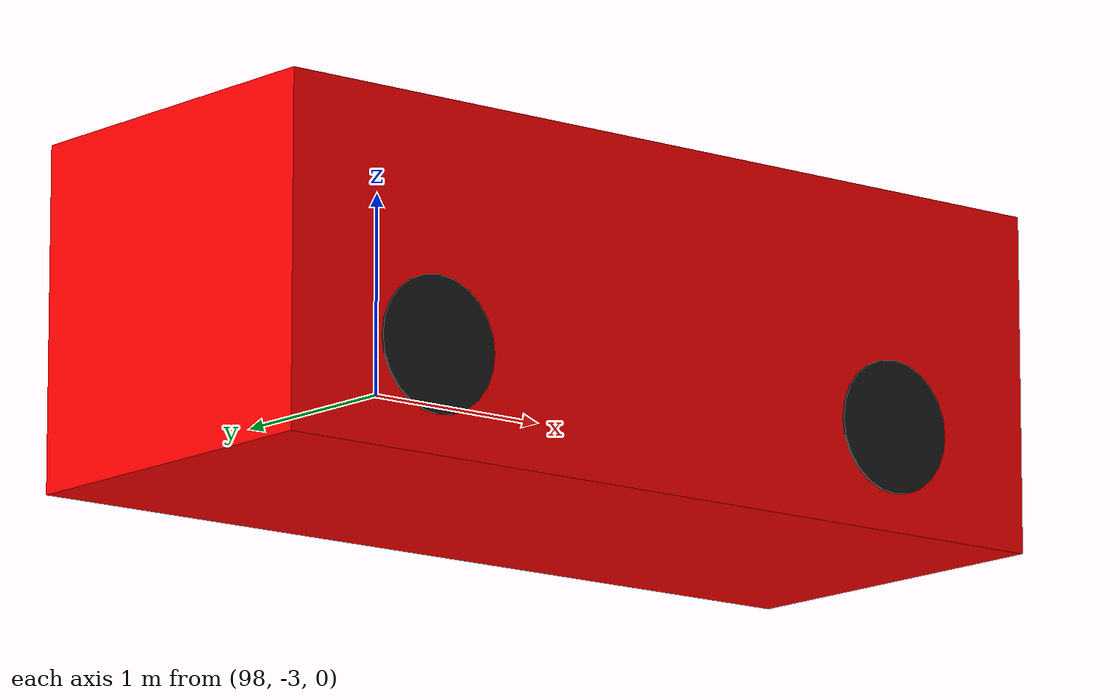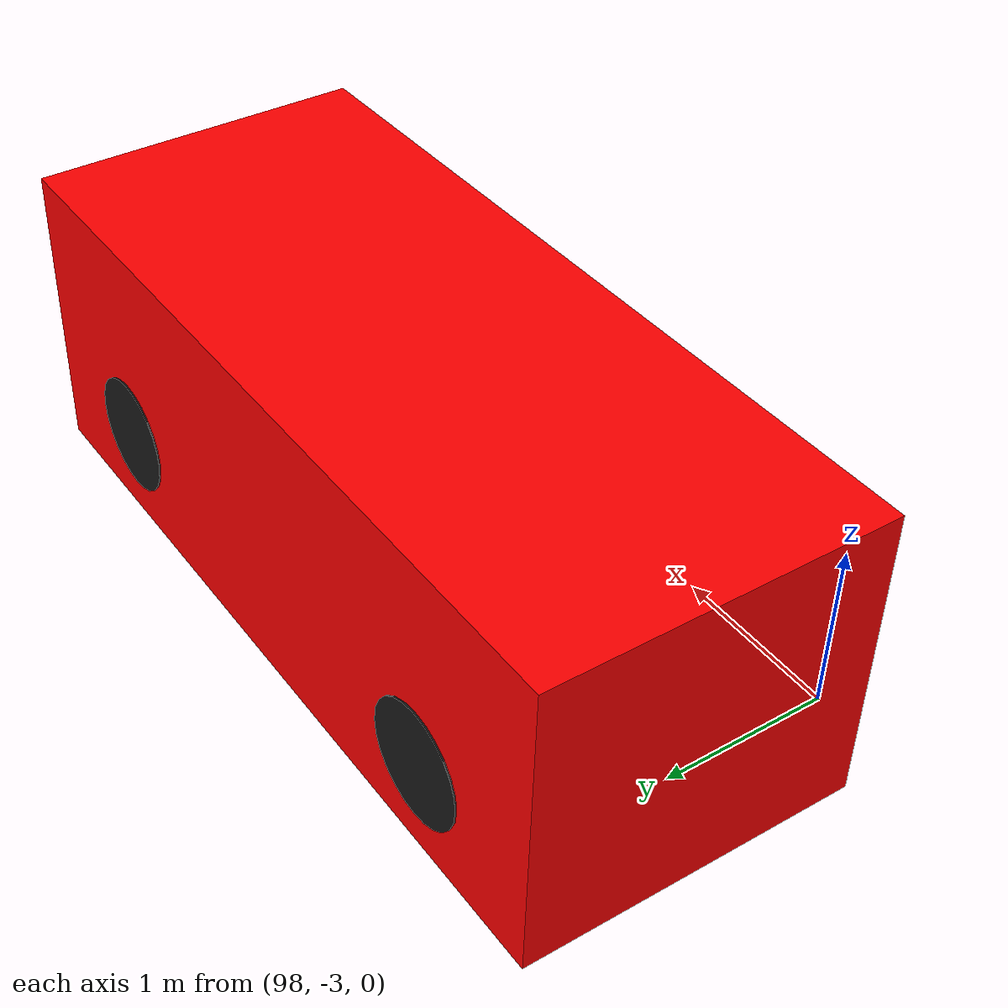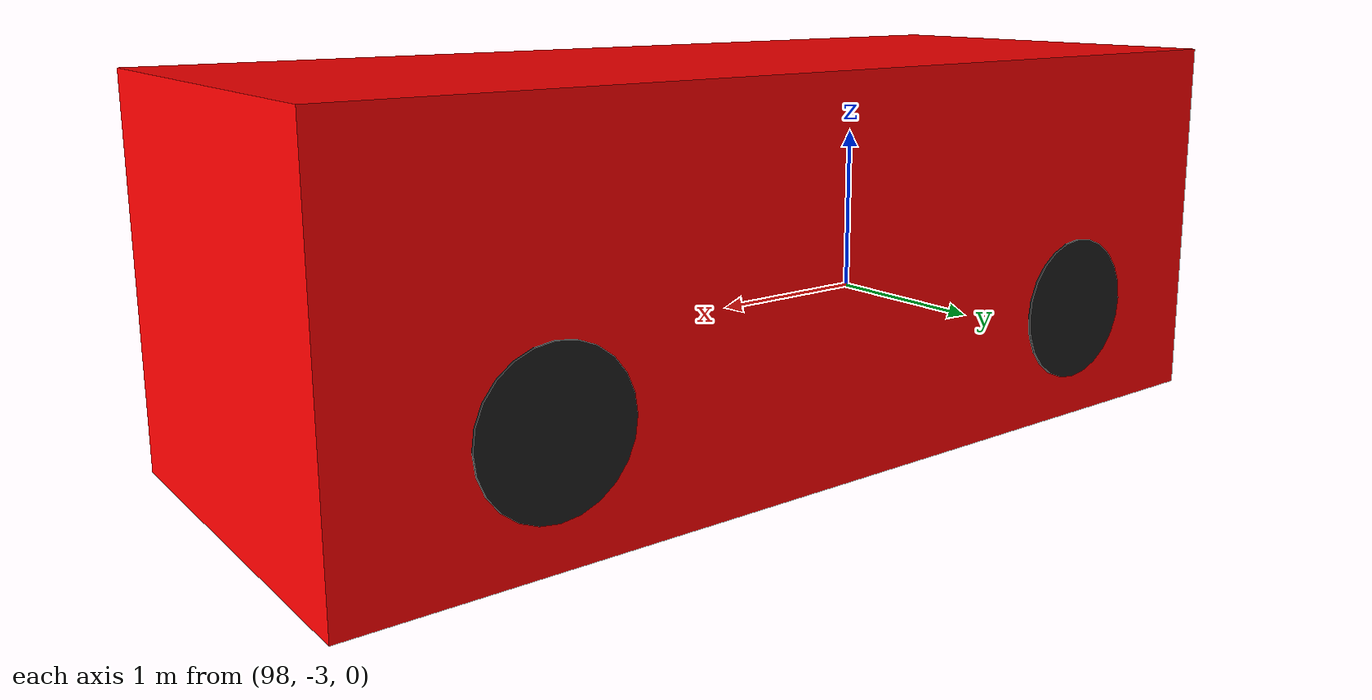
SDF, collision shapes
<?xml version="1.0" ?>
<sdf version="1.6">
  <model name="target_vehicle">
    <static>false</static>
    <pose>100 -1.85 0 0 0 0</pose>

    <link name="chassis">
      <pose>0 0 0.5 0 0 0</pose>
      <inertial>
        <mass>2000.0</mass>
        <inertia>
          <ixx>700.0</ixx><ixy>0</ixy><ixz>0</ixz>
          <iyy>2000.0</iyy><iyz>0</iyz>
          <izz>2000.0</izz>
        </inertia>
      </inertial>

      <!-- Visual: use SUV mesh from gazebo_models -->
      <visual name="body_visual">
        <pose>0 0 0 0 0 0</pose>
        <geometry>
          <mesh>
            <uri>model://suv/meshes/suv.obj</uri>
            <scale>1 1 1</scale>
          </mesh>
        </geometry>
      </visual>

      <!-- Collision: simplified box -->
      <collision name="body_collision">
        <pose>0 0 0.2 0 0 0</pose>
        <geometry>
          <box>
            <size>4.8 2.0 1.8</size>
          </box>
        </geometry>
      </collision>

      <!-- Rear reflector (visual indicator for lidar detection) -->
      <visual name="rear_reflector">
        <pose>-2.4 0 0.3 0 0 0</pose>
        <geometry>
          <box><size>0.05 1.6 0.3</size></box>
        </geometry>
        <material>
          <ambient>1.0 0.0 0.0 1</ambient>
          <diffuse>1.0 0.0 0.0 1</diffuse>
        </material>
      </visual>
    </link>

    <!-- Wheels (visual only for target) -->
    <link name="fl_wheel">
      <pose>1.5 0.9 0.35 -1.5708 0 0</pose>
      <inertial><mass>15.0</mass><inertia><ixx>0.5</ixx><ixy>0</ixy><ixz>0</ixz><iyy>0.5</iyy><iyz>0</iyz><izz>0.9</izz></inertia></inertial>
      <visual name="visual"><geometry><cylinder><radius>0.35</radius><length>0.22</length></cylinder></geometry>
        <material><ambient>0.1 0.1 0.1 1</ambient><diffuse>0.1 0.1 0.1 1</diffuse></material></visual>
      <collision name="collision"><geometry><cylinder><radius>0.35</radius><length>0.22</length></cylinder></geometry></collision>
    </link>
    <link name="fr_wheel">
      <pose>1.5 -0.9 0.35 -1.5708 0 0</pose>
      <inertial><mass>15.0</mass><inertia><ixx>0.5</ixx><ixy>0</ixy><ixz>0</ixz><iyy>0.5</iyy><iyz>0</iyz><izz>0.9</izz></inertia></inertial>
      <visual name="visual"><geometry><cylinder><radius>0.35</radius><length>0.22</length></cylinder></geometry>
        <material><ambient>0.1 0.1 0.1 1</ambient><diffuse>0.1 0.1 0.1 1</diffuse></material></visual>
      <collision name="collision"><geometry><cylinder><radius>0.35</radius><length>0.22</length></cylinder></geometry></collision>
    </link>
    <link name="rl_wheel">
      <pose>-1.5 0.9 0.35 -1.5708 0 0</pose>
      <inertial><mass>15.0</mass><inertia><ixx>0.5</ixx><ixy>0</ixy><ixz>0</ixz><iyy>0.5</iyy><iyz>0</iyz><izz>0.9</izz></inertia></inertial>
      <visual name="visual"><geometry><cylinder><radius>0.35</radius><length>0.22</length></cylinder></geometry>
        <material><ambient>0.1 0.1 0.1 1</ambient><diffuse>0.1 0.1 0.1 1</diffuse></material></visual>
      <collision name="collision"><geometry><cylinder><radius>0.35</radius><length>0.22</length></cylinder></geometry></collision>
    </link>
    <link name="rr_wheel">
      <pose>-1.5 -0.9 0.35 -1.5708 0 0</pose>
      <inertial><mass>15.0</mass><inertia><ixx>0.5</ixx><ixy>0</ixy><ixz>0</ixz><iyy>0.5</iyy><iyz>0</iyz><izz>0.9</izz></inertia></inertial>
      <visual name="visual"><geometry><cylinder><radius>0.35</radius><length>0.22</length></cylinder></geometry>
        <material><ambient>0.1 0.1 0.1 1</ambient><diffuse>0.1 0.1 0.1 1</diffuse></material></visual>
      <collision name="collision"><geometry><cylinder><radius>0.35</radius><length>0.22</length></cylinder></geometry></collision>
    </link>

    <joint name="fl_joint" type="revolute"><parent>chassis</parent><child>fl_wheel</child><axis><xyz>0 0 1</xyz></axis></joint>
    <joint name="fr_joint" type="revolute"><parent>chassis</parent><child>fr_wheel</child><axis><xyz>0 0 1</xyz></axis></joint>
    <joint name="rl_joint" type="revolute"><parent>chassis</parent><child>rl_wheel</child><axis><xyz>0 0 1</xyz></axis></joint>
    <joint name="rr_joint" type="revolute"><parent>chassis</parent><child>rr_wheel</child><axis><xyz>0 0 1</xyz></axis></joint>

    <!-- Planar move plugin: controlled by scenario_controller via cmd_vel -->
    <plugin name="object_controller" filename="libgazebo_ros_planar_move.so">
      <ros>
        <namespace>/aeb/target</namespace>
      </ros>
      <command_topic>cmd_vel</command_topic>
      <odometry_topic>odom</odometry_topic>
      <odometry_frame>odom_target</odometry_frame>
      <robot_base_frame>target_vehicle</robot_base_frame>
      <odometry_rate>100.0</odometry_rate>
      <publish_odom>true</publish_odom>
      <publish_odom_tf>true</publish_odom_tf>
    </plugin>

  </model>
</sdf>
